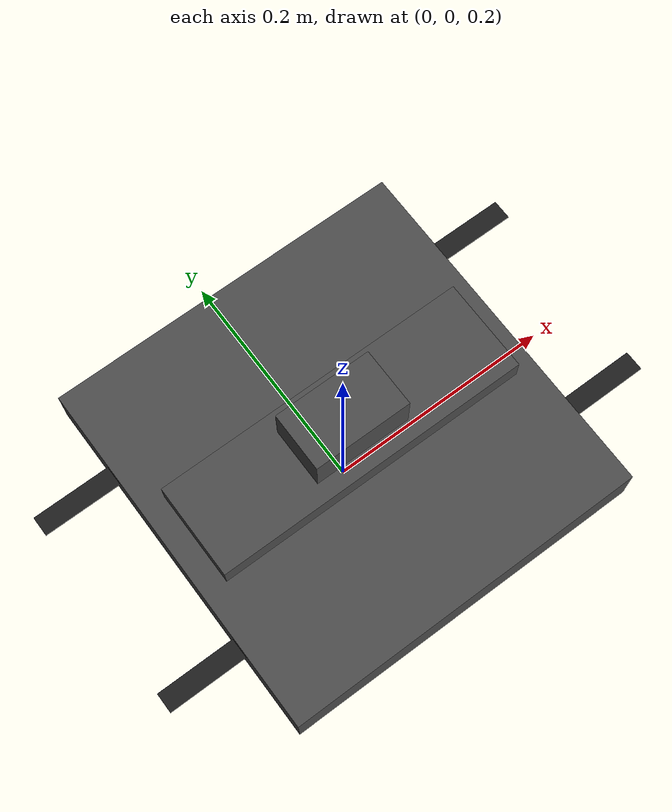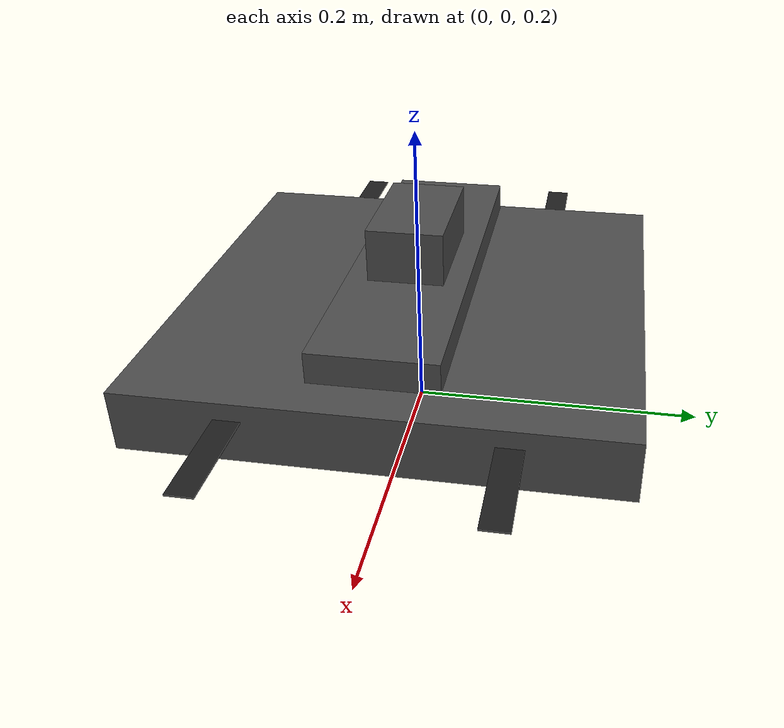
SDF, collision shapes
<?xml version="1.0" encoding="UTF-8"?>
<sdf version='1.9'>
  <model name='punisher'>
    <include merge='true'>
      <uri>model://punisher_base</uri>
    </include>
    <plugin filename="gz-sim-multicopter-motor-model-system" name="gz::sim::systems::MulticopterMotorModel">
      <jointName>rotor_0_joint</jointName>
      <linkName>rotor_0</linkName>
      <turningDirection>ccw</turningDirection>
      <timeConstantUp>0.000125</timeConstantUp>
      <timeConstantDown>0.00025</timeConstantDown>
      <maxRotVelocity>20000.0</maxRotVelocity>
      <motorConstant>0.00001068572</motorConstant>
      <momentConstant>0.016</momentConstant>
      <commandSubTopic>command/motor_speed</commandSubTopic>
      <motorNumber>0</motorNumber>
      <rotorDragCoefficient>8.06428e-05</rotorDragCoefficient>
      <rollingMomentCoefficient>1e-06</rollingMomentCoefficient>
      <rotorVelocitySlowdownSim>10</rotorVelocitySlowdownSim>
      <motorType>velocity</motorType>
    </plugin>
    <plugin filename="gz-sim-multicopter-motor-model-system" name="gz::sim::systems::MulticopterMotorModel">
      <jointName>rotor_1_joint</jointName>
      <linkName>rotor_1</linkName>
      <turningDirection>ccw</turningDirection>
      <timeConstantUp>0.000125</timeConstantUp>
      <timeConstantDown>0.00025</timeConstantDown>
      <maxRotVelocity>20000.0</maxRotVelocity>
      <motorConstant>0.00001068572</motorConstant>
      <momentConstant>0.016</momentConstant>
      <commandSubTopic>command/motor_speed</commandSubTopic>
      <motorNumber>1</motorNumber>
      <rotorDragCoefficient>8.06428e-05</rotorDragCoefficient>
      <rollingMomentCoefficient>1e-06</rollingMomentCoefficient>
      <rotorVelocitySlowdownSim>10</rotorVelocitySlowdownSim>
      <motorType>velocity</motorType>
    </plugin>
    <plugin filename="gz-sim-multicopter-motor-model-system" name="gz::sim::systems::MulticopterMotorModel">
      <jointName>rotor_2_joint</jointName>
      <linkName>rotor_2</linkName>
      <turningDirection>cw</turningDirection>
      <timeConstantUp>0.000125</timeConstantUp>
      <timeConstantDown>0.00025</timeConstantDown>
      <maxRotVelocity>20000.0</maxRotVelocity>
      <motorConstant>0.00001068572</motorConstant>
      <momentConstant>0.016</momentConstant>
      <commandSubTopic>command/motor_speed</commandSubTopic>
      <motorNumber>2</motorNumber>
      <rotorDragCoefficient>8.06428e-05</rotorDragCoefficient>
      <rollingMomentCoefficient>1e-06</rollingMomentCoefficient>
      <rotorVelocitySlowdownSim>10</rotorVelocitySlowdownSim>
      <motorType>velocity</motorType>
    </plugin>
    <plugin filename="gz-sim-multicopter-motor-model-system" name="gz::sim::systems::MulticopterMotorModel">
      <jointName>rotor_3_joint</jointName>
      <linkName>rotor_3</linkName>
      <turningDirection>cw</turningDirection>
      <timeConstantUp>0.000125</timeConstantUp>
      <timeConstantDown>0.00025</timeConstantDown>
      <maxRotVelocity>20000.0</maxRotVelocity>
      <motorConstant>0.00001068572</motorConstant>
      <momentConstant>0.016</momentConstant>
      <commandSubTopic>command/motor_speed</commandSubTopic>
      <motorNumber>3</motorNumber>
      <rotorDragCoefficient>8.06428e-05</rotorDragCoefficient>
      <rollingMomentCoefficient>1e-06</rollingMomentCoefficient>
      <rotorVelocitySlowdownSim>10</rotorVelocitySlowdownSim>
      <motorType>velocity</motorType>
    </plugin>
  </model>
</sdf>

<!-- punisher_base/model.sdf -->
<sdf version='1.9'>
  <model name='punisher_base'>
    <pose>0 0 .24 0 0 0</pose>
    <self_collide>false</self_collide>
    <static>false</static>
    <link name="base_link">
      <inertial>
        <mass>2.0</mass>
        <inertia>
          <ixx>0.02166666666666667</ixx>
          <ixy>0</ixy>
          <ixz>0</ixz>
          <iyy>0.02166666666666667</iyy>
          <iyz>0</iyz>
          <izz>0.04000000000000001</izz>
        </inertia>
      </inertial>
      <gravity>true</gravity>
      <velocity_decay/>
      <visual name="base_link_visual">
        <pose>0 0 .025 3.141592654 0 0</pose>
        <geometry>
          <mesh>
            <scale>1 1 1</scale>
            <uri>model://punisher_base/meshes/bledned_drone_base.dae</uri>
          </mesh>
        </geometry>
        <material>
          <script>
            <name>Gazebo/DarkGrey</name>
            <uri>file://media/materials/scripts/gazebo.material</uri>
          </script>
        </material>
      </visual>
      <visual name="5010_motor_base_0">
        <pose>0.082 -0.082 0.025 0 0 -.45</pose>
        <geometry>
          <mesh>
            <scale>1 1 1</scale>
            <uri>model:/punisher_base/meshes/blended_motor.dae</uri>
          </mesh>
        </geometry>
        <material>
          <script>
            <name>Gazebo/DarkGrey</name>
            <uri>file://media/materials/scripts/gazebo.material</uri>
          </script>
        </material>
      </visual>
      <visual name="5010_motor_base_1">
        <pose>-0.082 0.082 0.0250 0 0 -.45</pose>
        <geometry>
          <mesh>
            <scale>1 1 1</scale>
            <uri>model:/punisher_base/meshes/blended_motor.dae</uri>
          </mesh>
        </geometry>
        <material>
          <script>
            <name>Gazebo/DarkGrey</name>
            <uri>file://media/materials/scripts/gazebo.material</uri>
          </script>
        </material>
      </visual>
      <visual name="5010_motor_base_2">
        <pose>0.082 0.082 0.0250 0 0 -.45</pose>
        <geometry>
          <mesh>
            <scale>1 1 1</scale>
            <uri>model:/punisher_base/meshes/blended_motor.dae</uri>
          </mesh>
        </geometry>
        <material>
          <script>
            <name>Gazebo/DarkGrey</name>
            <uri>file://media/materials/scripts/gazebo.material</uri>
          </script>
        </material>
      </visual>
      <visual name="5010_motor_base_3">
        <pose>-0.082 -0.082 0.0250 0 0 -.45</pose>
        <geometry>
          <mesh>
            <scale>1 1 1</scale>
            <uri>model:/punisher_base/meshes/blended_motor.dae</uri>
          </mesh>
        </geometry>
        <material>
          <script>
            <name>Gazebo/DarkGrey</name>
            <uri>file://media/materials/scripts/gazebo.material</uri>
          </script>
        </material>
      </visual>
      <visual name="NXP_FMUK66_TOP">
        <pose>0 0.005 .11 0 0 -3.1415</pose>
        <cast_shadows>false</cast_shadows>
        <geometry>
          <plane>
            <normal>0 0 1</normal>
            <size>.0566666 .0175</size>
          </plane>
        </geometry>
        <material>
          <diffuse>1.0 1.0 1.0</diffuse>
          <specular>1.0 1.0 1.0</specular>
          <pbr>
            <metal>
              <albedo_map>model://punisher_base/materials/textures/qadt.png</albedo_map>
            </metal>
          </pbr>
        </material>
      </visual>
      <collision name="base_link_collision_0">
        <pose>0 0 .027 0.0 0 0</pose>
        <geometry>
          <box>
            <size>0.31 0.31 0.04</size>
          </box>
        </geometry>
        <surface>
          <contact>
            <ode>
              <min_depth>0.001</min_depth>
              <max_vel>0</max_vel>
            </ode>
          </contact>
          <friction>
            <ode/>
          </friction>
        </surface>
      </collision>
       <collision name="base_link_collision_1">
        <pose>0 0 0.083 0 0 0</pose>
        <geometry>
          <box>
            <size>0.083 0.05 0.05</size>
          </box>
        </geometry>
        <surface>
          <contact>
            <ode>
              <min_depth>0.001</min_depth>
              <max_vel>0</max_vel>
            </ode>
          </contact>
          <friction>
            <ode/>
          </friction>
        </surface>
      </collision>
      <collision name="base_link_collision_2">
        <pose>0 0 0.063 0 0 0</pose>
        <geometry>
          <box>
            <size>0.27 0.08 0.02</size>
          </box>
        </geometry>
        <surface>
          <contact>
            <ode>
              <min_depth>0.001</min_depth>
              <max_vel>0</max_vel>
            </ode>
          </contact>
          <friction>
            <ode/>
          </friction>
        </surface>
      </collision>
          <collision name="base_link_collision_3">
        <pose>0 0 0 0 0 0</pose>
        <geometry>
          <box>
            <size>0.085 0.1 0.073</size>
          </box>
        </geometry>
        <surface>
          <contact>
            <ode>
              <min_depth>0.001</min_depth>
              <max_vel>0</max_vel>
            </ode>
          </contact>
          <friction>
            <ode/>
          </friction>
        </surface>
      </collision>
      <sensor name="air_pressure_sensor" type="air_pressure">
        <always_on>1</always_on>
        <update_rate>50</update_rate>
        <air_pressure>
          <pressure>
            <noise type="gaussian">
              <mean>0</mean>
              <stddev>0.01</stddev>
            </noise>
          </pressure>
        </air_pressure>
      </sensor>
      <sensor name="imu_sensor" type="imu">
        <always_on>1</always_on>
        <update_rate>250</update_rate>
        <imu>
          <angular_velocity>
            <x>
              <noise type="gaussian">
                <mean>0</mean>
                <stddev>0.00018665</stddev>
                <dynamic_bias_stddev>3.8785e-05</dynamic_bias_stddev>
                <dynamic_bias_correlation_time>1000</dynamic_bias_correlation_time>
              </noise>
            </x>
            <y>
              <noise type="gaussian">
                <mean>0</mean>
                <stddev>0.00018665</stddev>
                <dynamic_bias_stddev>3.8785e-05</dynamic_bias_stddev>
                <dynamic_bias_correlation_time>1000</dynamic_bias_correlation_time>
              </noise>
            </y>
            <z>
              <noise type="gaussian">
                <mean>0</mean>
                <stddev>0.00018665</stddev>
                <dynamic_bias_stddev>3.8785e-05</dynamic_bias_stddev>
                <dynamic_bias_correlation_time>1000</dynamic_bias_correlation_time>
              </noise>
            </z>
          </angular_velocity>
          <linear_acceleration>
            <x>
              <noise type="gaussian">
                <mean>0</mean>
                <stddev>0.00186</stddev>
                <dynamic_bias_stddev>0.006</dynamic_bias_stddev>
                <dynamic_bias_correlation_time>300</dynamic_bias_correlation_time>
              </noise>
            </x>
            <y>
              <noise type="gaussian">
                <mean>0</mean>
                <stddev>0.00186</stddev>
                <dynamic_bias_stddev>0.006</dynamic_bias_stddev>
                <dynamic_bias_correlation_time>300</dynamic_bias_correlation_time>
              </noise>
            </y>
            <z>
              <noise type="gaussian">
                <mean>0</mean>
                <stddev>0.00186</stddev>
                <dynamic_bias_stddev>0.006</dynamic_bias_stddev>
                <dynamic_bias_correlation_time>300</dynamic_bias_correlation_time>
              </noise>
            </z>
          </linear_acceleration>
        </imu>
      </sensor>
      <sensor name="navsat_sensor" type="navsat">
        <always_on>1</always_on>
        <update_rate>30</update_rate>
      </sensor>
    </link>
    <link name="rotor_0">
      <gravity>true</gravity>
      <self_collide>false</self_collide>
      <velocity_decay/>
      <pose>0.082 -0.082 0.0350 0 0 0</pose>
      <inertial>
          <mass>0.016076923076923075</mass>
          <inertia>
            <ixx>3.8464910483993325e-07</ixx>
            <iyy>2.6115851691700804e-05</iyy>
            <izz>2.649858234714004e-05</izz>
          </inertia>
        </inertial>
      <visual name="rotor_0_visual">
        <pose>0 0 0 0 0 -.45</pose>
        <geometry>
          <mesh>
            <scale>1 1 1</scale>
            <uri>model://punisher_base/meshes/blended_prop.dae</uri>
          </mesh>
        </geometry>
        <material>
          <script>
            <name>Gazebo/Black</name>
            <uri>file://media/materials/scripts/gazebo.material</uri>
          </script>
        </material>
      </visual>
      <collision name="rotor_0_collision">
        <pose>0 0 0 0 0 0 </pose>
        <geometry>
          <box>
            <size>0.2792307692307692 0.016923076923076923 0.0008461538461538462</size>
          </box>
        </geometry>
        <surface>
          <contact>
            <ode>
              <min_depth>0.001</min_depth>
              <max_vel>0</max_vel>
            </ode>
          </contact>
          <friction>
            <ode/>
          </friction>
        </surface>
      </collision>
    </link>
    <joint name="rotor_0_joint" type="revolute">
      <parent>base_link</parent>
      <child>rotor_0</child>
      <axis>
        <xyz>0 0 1</xyz>
        <limit>
          <lower>-1e+16</lower>
          <upper>1e+16</upper>
        </limit>
        <dynamics>
          <spring_reference>0</spring_reference>
          <spring_stiffness>0</spring_stiffness>
        </dynamics>
      </axis>
    </joint>
    <link name="rotor_1">
      <gravity>true</gravity>
      <self_collide>false</self_collide>
      <velocity_decay/>
      <pose>-0.082 0.082 0.0350 0 0 0</pose>
      <inertial>
          <mass>0.016076923076923075</mass>
          <inertia>
            <ixx>3.8464910483993325e-07</ixx>
            <iyy>2.6115851691700804e-05</iyy>
            <izz>2.649858234714004e-05</izz>
          </inertia>
        </inertial>
      <visual name="rotor_1_visual">
        <pose>0 0 0 0 0 -.45</pose>
        <geometry>
          <mesh>
            <scale>1 1 1</scale>
            <uri>model://punisher_base/meshes/blended_prop.dae</uri>
          </mesh>
        </geometry>
        <material>
          <script>
            <name>Gazebo/Black</name>
            <uri>file://media/materials/scripts/gazebo.material</uri>
          </script>
        </material>
      </visual>
      <collision name="rotor_1_collision">
        <pose>0 0 0 0 0 0 </pose>
        <geometry>
          <box>
            <size>0.2792307692307692 0.016923076923076923 0.0008461538461538462</size>
          </box>
        </geometry>
        <surface>
          <contact>
            <ode>
              <min_depth>0.001</min_depth>
              <max_vel>0</max_vel>
            </ode>
          </contact>
          <friction>
            <ode/>
          </friction>
        </surface>
      </collision>
    </link>
    <joint name="rotor_1_joint" type="revolute">
      <parent>base_link</parent>
      <child>rotor_1</child>
      <axis>
        <xyz>0 0 1</xyz>
        <limit>
          <lower>-1e+16</lower>
          <upper>1e+16</upper>
        </limit>
        <dynamics>
          <spring_reference>0</spring_reference>
          <spring_stiffness>0</spring_stiffness>
        </dynamics>
      </axis>
    </joint>
    <link name="rotor_2">
      <gravity>true</gravity>
      <self_collide>false</self_collide>
      <velocity_decay/>
      <pose>0.082 0.082 0.0350 0 0 0</pose>
      <inertial>
          <mass>0.016076923076923075</mass>
          <inertia>
            <ixx>3.8464910483993325e-07</ixx>
            <iyy>2.6115851691700804e-05</iyy>
            <izz>2.649858234714004e-05</izz>
          </inertia>
        </inertial>
      <visual name="rotor_2_visual">
        <pose>0 0 0 0 0 -.45</pose>
        <geometry>
          <mesh>
            <scale>1 1 1</scale>
            <uri>model://punisher_base/meshes/blended_prop.dae</uri>
          </mesh>
        </geometry>
        <material>
          <script>
            <name>Gazebo/Black</name>
            <uri>file://media/materials/scripts/gazebo.material</uri>
          </script>
        </material>
      </visual>
      <collision name="rotor_2_collision">
        <pose>0 0 0 0 0 0 </pose>
        <geometry>
          <box>
            <size>0.2792307692307692 0.016923076923076923 0.0008461538461538462</size>
          </box>
        </geometry>
        <surface>
          <contact>
            <ode>
              <min_depth>0.001</min_depth>
              <max_vel>0</max_vel>
            </ode>
          </contact>
          <friction>
            <ode/>
          </friction>
        </surface>
      </collision>
    </link>
    <joint name="rotor_2_joint" type="revolute">
      <parent>base_link</parent>
      <child>rotor_2</child>
      <axis>
        <xyz>0 0 1</xyz>
        <limit>
          <lower>-1e+16</lower>
          <upper>1e+16</upper>
        </limit>
        <dynamics>
          <spring_reference>0</spring_reference>
          <spring_stiffness>0</spring_stiffness>
        </dynamics>
      </axis>
    </joint>
    <link name="rotor_3">
      <gravity>true</gravity>
      <self_collide>false</self_collide>
      <velocity_decay/>
      <pose>-0.082 -0.082 0.0350 0 0 0</pose>
      <inertial>
          <mass>0.016076923076923075</mass>
          <inertia>
            <ixx>3.8464910483993325e-07</ixx>
            <iyy>2.6115851691700804e-05</iyy>
            <izz>2.649858234714004e-05</izz>
          </inertia>
        </inertial>
      <visual name="rotor_3_visual">
        <pose>0 0 0 0 0 0</pose>
        <geometry>
          <mesh>
            <scale>1 1 1</scale>
            <uri>model://punisher_base/meshes/blended_prop.dae</uri>
          </mesh>
        </geometry>
        <material>
          <script>
            <name>Gazebo/Black</name>
            <uri>file://media/materials/scripts/gazebo.material</uri>
          </script>
        </material>
      </visual>
      <collision name="rotor_3_collision">
        <pose>0 0 0 0 0 0 </pose>
        <geometry>
          <box>
            <size>0.2792307692307692 0.016923076923076923 0.0008461538461538462</size>
          </box>
        </geometry>
        <surface>
          <contact>
            <ode>
              <min_depth>0.001</min_depth>
              <max_vel>0</max_vel>
            </ode>
          </contact>
          <friction>
            <ode/>
          </friction>
        </surface>
      </collision>
    </link>
    <joint name="rotor_3_joint" type="revolute">
      <parent>base_link</parent>
      <child>rotor_3</child>
      <axis>
        <xyz>0 0 1</xyz>
        <limit>
          <lower>-1e+16</lower>
          <upper>1e+16</upper>
        </limit>
        <dynamics>
          <spring_reference>0</spring_reference>
          <spring_stiffness>0</spring_stiffness>
        </dynamics>
      </axis>
    </joint>
      <include merge='true'>
      <uri>model://euro_cam</uri>
      <pose>-0.06 0.05 0.05 0 1.57 3.14159</pose>
    </include>
    <joint name="CameraJoint" type="fixed">
      <parent>base_link</parent>
      <child>euro_cam/base_link</child>
      <pose relative_to="base_link">-0.6 0.05 0.05 0 1.57 3.14159</pose>
    </joint>
      <include merge="true">
      <uri>model://euro_lidar</uri>
      <pose>0.05 0 0 0 0 0</pose> <!-- Positioning the lidar away from the camera -->
    </include>
    <joint name="LidarJoint" type="fixed">
      <parent>base_link</parent>
      <child>euro_lidar/base_link</child>
      <pose relative_to="base_link">0.05 0 0 0 0 0</pose>
    </joint>
  </model>
</sdf>

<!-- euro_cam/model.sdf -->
<sdf version="1.9">
  <model name="camera">
    <pose>4 0 1.0 0 0 3.14</pose>
    <link name="euro_cam/base_link">
      <pose>0.05 0.05 0.05 0 0 0</pose>
      <inertial>
        <mass>0.01</mass>
        <inertia>
          <ixx>0.000166667</ixx>
          <iyy>0.000166667</iyy>
          <izz>0.000166667</izz>
        </inertia>
      </inertial>
      <collision name="collision">
        <geometry>
          <box>
            <size>0.03 0.03 0.03</size>
          </box>
        </geometry>
      </collision>
      <visual name="visual">
        <geometry>
          <box>
            <size>0.03 0.03 0.03</size>
          </box>
        </geometry>
      </visual>
      <sensor name="imager" type="camera">
        <camera>
          <horizontal_fov>1.0856</horizontal_fov>
          <image>
            <width>640</width>
            <height>480</height>
          </image>
          <clip>
            <near>0.1</near>
            <far>100</far>
          </clip>
        </camera>
        <always_on>1</always_on>
        <update_rate>30</update_rate>
        <visualize>true</visualize>
        <topic>camera/image_raw</topic>
      </sensor>
    </link>
  </model>
</sdf>

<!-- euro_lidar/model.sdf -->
<sdf version="1.6">
  <model name="euro_lidar">
    <link name="euro_lidar/base_link">
      <pose>0 0 0 0 0 0</pose>
      <inertial>
        <pose>0 0 0.0435 0 0 0</pose>
        <mass>0.37</mass>
        <inertia>
          <ixx>0.00034437749999999994</ixx>
          <ixy>0</ixy>
          <ixz>0</ixz>
          <iyy>0.00034437749999999994</iyy>
          <iyz>0</iyz>
          <izz>0.00022199999999999998</izz>
        </inertia>
      </inertial>
      <collision name="collision_base">
        <pose>0 0 0.0205 0 0 0</pose>
        <geometry>
          <box>
            <size>0.01 0.01 0.041</size>
          </box>
        </geometry>
      </collision>
      <visual name="visual">
        <geometry>
          <box>
            <size>0.01 0.01 0.041</size>
          </box>
        </geometry>
      </visual>
      <sensor name="lidar" type="gpu_lidar">
        <pose>0 0 0.055 0 0 0</pose>
        <ray>
          <scan>
            <vertical>
              <samples>1</samples> <!-- 1D lidar: single ray -->
              <resolution>0.01</resolution>
              <min_angle>0.0</min_angle> <!-- No angle range for 1D -->
              <max_angle>0.0</max_angle>
            </vertical>
          </scan>
          <range>
            <min>0.02</min> <!-- 2 cm minimum range -->
            <max>10.0</max> <!-- 4 meters maximum range -->
            <resolution>0.01</resolution> <!-- 1 cm resolution -->
          </range>
        </ray>
        <always_on>1</always_on>
        <update_rate>50</update_rate> <!-- 50 Hz update rate -->
        <visualize>true</visualize> <!-- Enable visualization for lidar rays -->
        <topic>lidar/z</topic> <!-- Publishes range data -->
      </sensor>
    </link>
  </model>
</sdf>
